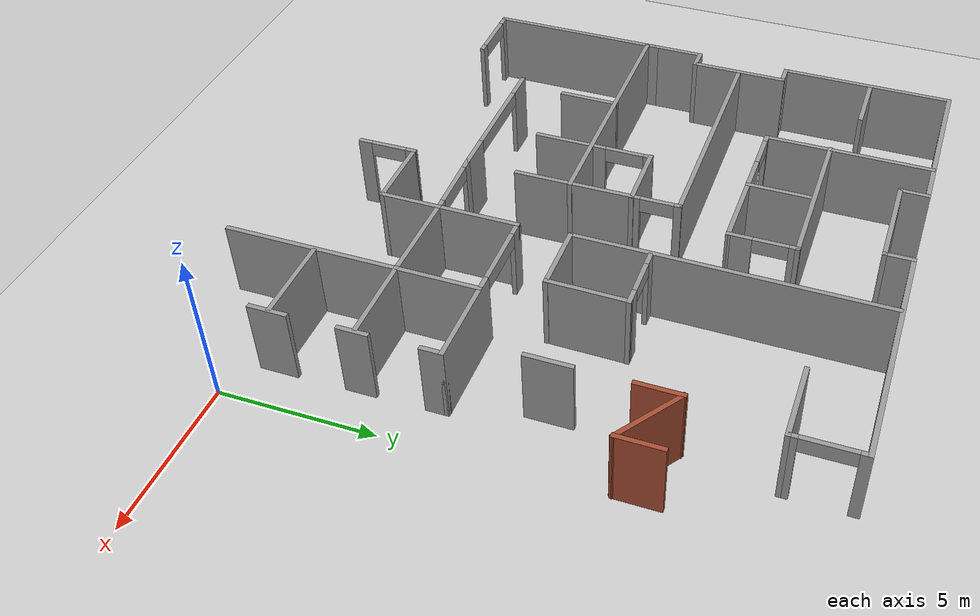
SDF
<sdf version="1.6">
 <world name="default">
  <model name="ground_plane">
   <static>1</static>
   <link name="link">
    <collision name="collision">
     <geometry><plane><normal>0 0 1</normal><size>100 100</size></plane></geometry>
     <surface><friction><ode><mu>100</mu><mu2>50</mu2></ode></friction></surface>
    </collision>
    <visual name="visual">
     <cast_shadows>0</cast_shadows>
     <geometry><plane><normal>0 0 1</normal><size>100 100</size></plane></geometry>
     <material>
      <script><uri>file://media/materials/scripts/gazebo.material</uri><name>Gazebo/Grey</name></script>
     </material>
    </visual>
   </link>
  </model>
  <model name="shopping01">
   <pose>-0.21266 0.4735 0 0 -0 0</pose>
   <link name="Wall_103">
    <collision name="Wall_103_Collision">
     <geometry><box><size>8.25 0.15 2.5</size></box></geometry>
     <pose>0 0 1.25 0 -0 0</pose>
    </collision>
    <visual name="Wall_103_Visual">
     <pose>0 0 1.25 0 -0 0</pose>
     <geometry><box><size>8.25 0.15 2.5</size></box></geometry>
     <material>
      <script><uri>file://media/materials/scripts/gazebo.material</uri><name>Gazebo/Grey</name></script>
      <ambient>1 1 1 1</ambient>
     </material>
     <meta><layer>0</layer></meta>
    </visual>
    <pose>-3.82398 2.01144 0 0 -0 1.5708</pose>
   </link>
   <link name="Wall_105">
    <collision name="Wall_105_Collision">
     <geometry><box><size>2.75 0.15 2.5</size></box></geometry>
     <pose>0 0 1.25 0 -0 0</pose>
    </collision>
    <visual name="Wall_105_Visual">
     <pose>0 0 1.25 0 -0 0</pose>
     <geometry><box><size>2.75 0.15 2.5</size></box></geometry>
     <material>
      <script><uri>file://media/materials/scripts/gazebo.material</uri><name>Gazebo/Grey</name></script>
      <ambient>1 1 1 1</ambient>
     </material>
     <meta><layer>0</layer></meta>
    </visual>
    <pose>-2.5383 3.46978 0 0 -0 0</pose>
   </link>
   <link name="Wall_109">
    <collision name="Wall_109_Collision">
     <geometry><box><size>2.75 0.15 2.5</size></box></geometry>
     <pose>0 0 1.25 0 -0 0</pose>
    </collision>
    <visual name="Wall_109_Visual">
     <pose>0 0 1.25 0 -0 0</pose>
     <geometry><box><size>2.75 0.15 2.5</size></box></geometry>
     <material>
      <script><uri>file://media/materials/scripts/gazebo.material</uri><name>Gazebo/Grey</name></script>
      <ambient>1 1 1 1</ambient>
     </material>
     <meta><layer>0</layer></meta>
    </visual>
    <pose>-2.4356 0.846548 0 0 -0 0</pose>
   </link>
   <link name="Wall_114">
    <collision name="Wall_114_Collision">
     <geometry><box><size>9.90884 0.15 2.5</size></box></geometry>
     <pose>0 0 1.25 0 -0 0</pose>
    </collision>
    <visual name="Wall_114_Visual">
     <pose>0 0 1.25 0 -0 0</pose>
     <geometry><box><size>9.90884 0.15 2.5</size></box></geometry>
     <material>
      <script><uri>file://media/materials/scripts/gazebo.material</uri><name>Gazebo/Grey</name></script>
      <ambient>1 1 1 1</ambient>
     </material>
     <meta><layer>0</layer></meta>
    </visual>
    <pose>-6.8277 12.6229 0 0 -0 -1.57579</pose>
   </link>
   <link name="Wall_115">
    <collision name="Wall_115_Collision">
     <geometry><box><size>2.26087 0.15 2.5</size></box></geometry>
     <pose>0 0 1.25 0 -0 0</pose>
    </collision>
    <visual name="Wall_115_Visual">
     <pose>0 0 1.25 0 -0 0</pose>
     <geometry><box><size>2.26087 0.15 2.5</size></box></geometry>
     <material>
      <script><uri>file://media/materials/scripts/gazebo.material</uri><name>Gazebo/Grey</name></script>
      <ambient>1 1 1 1</ambient>
     </material>
     <meta><layer>0</layer></meta>
    </visual>
    <pose>-5.78364 7.74355 0 0 -0 0</pose>
   </link>
   <link name="Wall_116">
    <collision name="Wall_116_Collision">
     <geometry><box><size>2.65952 0.15 2.5</size></box></geometry>
     <pose>0 0 1.25 0 -0 0</pose>
    </collision>
    <visual name="Wall_116_Visual">
     <pose>0 0 1.25 0 -0 0</pose>
     <geometry><box><size>2.65952 0.15 2.5</size></box></geometry>
     <material>
      <script><uri>file://media/materials/scripts/gazebo.material</uri><name>Gazebo/Grey</name></script>
      <ambient>1 1 1 1</ambient>
     </material>
     <meta><layer>0</layer></meta>
    </visual>
    <pose>-4.72553 8.99791 0 0 -0 1.5583</pose>
   </link>
   <link name="Wall_117">
    <pose>-5.7479 10.2523 0 0 -0 3.14159</pose>
    <visual name="Wall_117_Visual_0">
     <pose>-0.845011 0 1.25 0 -0 0</pose>
     <geometry><box><size>0.570847 0.15 2.5</size></box></geometry>
     <material>
      <script><uri>file://media/materials/scripts/gazebo.material</uri><name>Gazebo/Grey</name></script>
      <ambient>1 1 1 1</ambient>
     </material>
     <meta><layer>0</layer></meta>
    </visual>
    <collision name="Wall_117_Collision_0">
     <geometry><box><size>0.570847 0.15 2.5</size></box></geometry>
     <pose>-0.845011 0 1.25 0 -0 0</pose>
    </collision>
    <visual name="Wall_117_Visual_1">
     <pose>0.866184 0 1.25 0 -0 0</pose>
     <geometry><box><size>0.528501 0.15 2.5</size></box></geometry>
     <material>
      <script><uri>file://media/materials/scripts/gazebo.material</uri><name>Gazebo/Grey</name></script>
      <ambient>1 1 1 1</ambient>
     </material>
     <meta><layer>0</layer></meta>
    </visual>
    <collision name="Wall_117_Collision_1">
     <geometry><box><size>0.528501 0.15 2.5</size></box></geometry>
     <pose>0.866184 0 1.25 0 -0 0</pose>
    </collision>
    <visual name="Wall_117_Visual_2">
     <pose>0.021173 0 2.25 0 -0 0</pose>
     <geometry><box><size>1.16152 0.15 0.5</size></box></geometry>
     <material>
      <script><uri>file://media/materials/scripts/gazebo.material</uri><name>Gazebo/Grey</name></script>
      <ambient>1 1 1 1</ambient>
     </material>
     <meta><layer>0</layer></meta>
    </visual>
    <collision name="Wall_117_Collision_2">
     <geometry><box><size>1.16152 0.15 0.5</size></box></geometry>
     <pose>0.021173 0 2.25 0 -0 0</pose>
    </collision>
   </link>
   <link name="Wall_126">
    <collision name="Wall_126_Collision">
     <geometry><box><size>1.5 0.15 2.5</size></box></geometry>
     <pose>0 0 1.25 0 -0 0</pose>
    </collision>
    <visual name="Wall_126_Visual">
     <pose>0 0 1.25 0 -0 0</pose>
     <geometry><box><size>1.5 0.15 2.5</size></box></geometry>
     <material>
      <script><uri>file://media/materials/scripts/gazebo.material</uri><name>Gazebo/Grey</name></script>
      <ambient>1 1 1 1</ambient>
     </material>
     <meta><layer>0</layer></meta>
    </visual>
    <pose>-1.83472 8.87354 0 0 -0 -1.5708</pose>
   </link>
   <link name="Wall_136">
    <collision name="Wall_136_Collision">
     <geometry><box><size>1.5 0.15 2.5</size></box></geometry>
     <pose>0 0 1.25 0 -0 0</pose>
    </collision>
    <visual name="Wall_136_Visual">
     <pose>0 0 1.25 0 -0 0</pose>
     <geometry><box><size>1.5 0.15 2.5</size></box></geometry>
     <material>
      <script><uri>file://media/materials/scripts/gazebo.material</uri><name>Gazebo/Bricks</name></script>
      <ambient>1 1 1 1</ambient>
     </material>
     <meta><layer>0</layer></meta>
    </visual>
    <pose>0.043228 11.9946 0 0 -0 -1.5708</pose>
   </link>
   <link name="Wall_138">
    <collision name="Wall_138_Collision">
     <geometry><box><size>1.5 0.15 2.5</size></box></geometry>
     <pose>0 0 1.25 0 -0 0</pose>
    </collision>
    <visual name="Wall_138_Visual">
     <pose>0 0 1.25 0 -0 0</pose>
     <geometry><box><size>1.5 0.15 2.5</size></box></geometry>
     <material>
      <script><uri>file://media/materials/scripts/gazebo.material</uri><name>Gazebo/Bricks</name></script>
      <ambient>1 1 1 1</ambient>
     </material>
     <meta><layer>0</layer></meta>
    </visual>
    <pose>-1.83472 11.9692 0 0 -0 1.5708</pose>
   </link>
   <link name="Wall_139">
    <collision name="Wall_139_Collision">
     <geometry><box><size>2.4481 0.15 2.5</size></box></geometry>
     <pose>0 0 1.25 0 -0 0</pose>
    </collision>
    <visual name="Wall_139_Visual">
     <pose>0 0 1.25 0 -0 0</pose>
     <geometry><box><size>2.4481 0.15 2.5</size></box></geometry>
     <material>
      <script><uri>file://media/materials/scripts/gazebo.material</uri><name>Gazebo/Bricks</name></script>
      <ambient>1 1 1 1</ambient>
     </material>
     <meta><layer>0</layer></meta>
    </visual>
    <pose>-0.895747 11.9819 0 0 -0 -0.614303</pose>
   </link>
   <link name="Wall_146">
    <collision name="Wall_146_Collision">
     <geometry><box><size>2.5 0.15 2.5</size></box></geometry>
     <pose>0 0 1.25 0 -0 0</pose>
    </collision>
    <visual name="Wall_146_Visual">
     <pose>0 0 1.25 0 -0 0</pose>
     <geometry><box><size>2.5 0.15 2.5</size></box></geometry>
     <material>
      <script><uri>file://media/materials/scripts/gazebo.material</uri><name>Gazebo/Grey</name></script>
      <ambient>1 1 1 1</ambient>
     </material>
     <meta><layer>0</layer></meta>
    </visual>
    <pose>-2.60522 15.47 0 0 -0 3.14159</pose>
   </link>
   <link name="Wall_208">
    <pose>-9.06127 0.697969 0 0 -0 1.58217</pose>
    <visual name="Wall_208_Visual_0">
     <pose>-0.7706 0 1.25 0 -0 0</pose>
     <geometry><box><size>0.458558 0.15 2.5</size></box></geometry>
     <material>
      <script><uri>file://media/materials/scripts/gazebo.material</uri><name>Gazebo/Grey</name></script>
      <ambient>1 1 1 1</ambient>
     </material>
     <meta><layer>0</layer></meta>
    </visual>
    <collision name="Wall_208_Collision_0">
     <geometry><box><size>0.458558 0.15 2.5</size></box></geometry>
     <pose>-0.7706 0 1.25 0 -0 0</pose>
    </collision>
    <visual name="Wall_208_Visual_1">
     <pose>0.819729 0 1.25 0 -0 0</pose>
     <geometry><box><size>0.360301 0.15 2.5</size></box></geometry>
     <material>
      <script><uri>file://media/materials/scripts/gazebo.material</uri><name>Gazebo/Grey</name></script>
      <ambient>1 1 1 1</ambient>
     </material>
     <meta><layer>0</layer></meta>
    </visual>
    <collision name="Wall_208_Collision_1">
     <geometry><box><size>0.360301 0.15 2.5</size></box></geometry>
     <pose>0.819729 0 1.25 0 -0 0</pose>
    </collision>
    <visual name="Wall_208_Visual_2">
     <pose>0.049128 0 2.25 0 -0 0</pose>
     <geometry><box><size>1.1809 0.15 0.5</size></box></geometry>
     <material>
      <script><uri>file://media/materials/scripts/gazebo.material</uri><name>Gazebo/Grey</name></script>
      <ambient>1 1 1 1</ambient>
     </material>
     <meta><layer>0</layer></meta>
    </visual>
    <collision name="Wall_208_Collision_2">
     <geometry><box><size>1.1809 0.15 0.5</size></box></geometry>
     <pose>0.049128 0 2.25 0 -0 0</pose>
    </collision>
   </link>
   <link name="Wall_209">
    <collision name="Wall_209_Collision">
     <geometry><box><size>2.46 0.15 2.5</size></box></geometry>
     <pose>0 0 1.25 0 -0 0</pose>
    </collision>
    <visual name="Wall_209_Visual">
     <pose>0 0 1.25 0 -0 0</pose>
     <geometry><box><size>2.46 0.15 2.5</size></box></geometry>
     <material>
      <script><uri>file://media/materials/scripts/gazebo.material</uri><name>Gazebo/Grey</name></script>
      <ambient>1 1 1 1</ambient>
     </material>
     <meta><layer>0</layer></meta>
    </visual>
    <pose>-7.91678 1.62295 0 0 -0 0</pose>
   </link>
   <link name="Wall_216">
    <collision name="Wall_216_Collision">
     <geometry><box><size>2 0.15 2.5</size></box></geometry>
     <pose>0 0 1.25 0 -0 0</pose>
    </collision>
    <visual name="Wall_216_Visual">
     <pose>0 0 1.25 0 -0 0</pose>
     <geometry><box><size>2 0.15 2.5</size></box></geometry>
     <material>
      <script><uri>file://media/materials/scripts/gazebo.material</uri><name>Gazebo/Grey</name></script>
      <ambient>1 1 1 1</ambient>
     </material>
     <meta><layer>0</layer></meta>
    </visual>
    <pose>-6.76342 2.57901 0 0 -0 -1.5708</pose>
   </link>
   <link name="Wall_218">
    <collision name="Wall_218_Collision">
     <geometry><box><size>3.07532 0.15 2.5</size></box></geometry>
     <pose>0 0 1.25 0 -0 0</pose>
    </collision>
    <visual name="Wall_218_Visual">
     <pose>0 0 1.25 0 -0 0</pose>
     <geometry><box><size>3.07532 0.15 2.5</size></box></geometry>
     <material>
      <script><uri>file://media/materials/scripts/gazebo.material</uri><name>Gazebo/Grey</name></script>
      <ambient>1 1 1 1</ambient>
     </material>
     <meta><layer>0</layer></meta>
    </visual>
    <pose>-5.30086 3.48689 0 0 -0 -0.011703</pose>
   </link>
   <link name="Wall_3">
    <collision name="Wall_3_Collision">
     <geometry><box><size>5.5 0.15 2.5</size></box></geometry>
     <pose>0 0 1.25 0 -0 0</pose>
    </collision>
    <visual name="Wall_3_Visual">
     <pose>0 0 1.25 0 -0 0</pose>
     <geometry><box><size>5.5 0.15 2.5</size></box></geometry>
     <material>
      <script><uri>file://media/materials/scripts/gazebo.material</uri><name>Gazebo/Grey</name></script>
      <ambient>1 1 1 1</ambient>
     </material>
     <meta><layer>0</layer></meta>
    </visual>
    <pose>-14.8052 17.57 0 0 -0 0</pose>
   </link>
   <link name="Wall_300">
    <collision name="Wall_300_Collision">
     <geometry><box><size>2 0.15 2.5</size></box></geometry>
     <pose>0 0 1.25 0 -0 0</pose>
    </collision>
    <visual name="Wall_300_Visual">
     <pose>0 0 1.25 0 -0 0</pose>
     <geometry><box><size>2 0.15 2.5</size></box></geometry>
     <material>
      <script><uri>file://media/materials/scripts/gazebo.material</uri><name>Gazebo/Grey</name></script>
      <ambient>1 1 1 1</ambient>
     </material>
     <meta><layer>0</layer></meta>
    </visual>
    <pose>-16.4156 14.9184 0 0 -0 0</pose>
   </link>
   <link name="Wall_334">
    <collision name="Wall_334_Collision">
     <geometry><box><size>5.5 0.15 2.5</size></box></geometry>
     <pose>0 0 1.25 0 -0 0</pose>
    </collision>
    <visual name="Wall_334_Visual">
     <pose>0 0 1.25 0 -0 0</pose>
     <geometry><box><size>5.5 0.15 2.5</size></box></geometry>
     <material>
      <script><uri>file://media/materials/scripts/gazebo.material</uri><name>Gazebo/Grey</name></script>
      <ambient>1 1 1 1</ambient>
     </material>
     <meta><layer>0</layer></meta>
    </visual>
    <pose>-13.4783 14.8705 0 0 -0 -1.5708</pose>
   </link>
   <link name="Wall_335">
    <pose>-10.95 12.1843 0 0 -0 -0.004425</pose>
    <visual name="Wall_335_Visual_0">
     <pose>-2.44877 0 1.25 0 -0 0</pose>
     <geometry><box><size>0.309033 0.15 2.5</size></box></geometry>
     <material>
      <script><uri>file://media/materials/scripts/gazebo.material</uri><name>Gazebo/Grey</name></script>
      <ambient>1 1 1 1</ambient>
     </material>
     <meta><layer>0</layer></meta>
    </visual>
    <collision name="Wall_335_Collision_0">
     <geometry><box><size>0.309033 0.15 2.5</size></box></geometry>
     <pose>-2.44877 0 1.25 0 -0 0</pose>
    </collision>
    <visual name="Wall_335_Visual_1">
     <pose>0.727252 0 1.25 0 -0 0</pose>
     <geometry><box><size>3.75207 0.15 2.5</size></box></geometry>
     <material>
      <script><uri>file://media/materials/scripts/gazebo.material</uri><name>Gazebo/Grey</name></script>
      <ambient>1 1 1 1</ambient>
     </material>
     <meta><layer>0</layer></meta>
    </visual>
    <collision name="Wall_335_Collision_1">
     <geometry><box><size>3.75207 0.15 2.5</size></box></geometry>
     <pose>0.727252 0 1.25 0 -0 0</pose>
    </collision>
    <visual name="Wall_335_Visual_2">
     <pose>-1.72152 0 2.25 0 -0 0</pose>
     <geometry><box><size>1.14547 0.15 0.5</size></box></geometry>
     <material>
      <script><uri>file://media/materials/scripts/gazebo.material</uri><name>Gazebo/Grey</name></script>
      <ambient>1 1 1 1</ambient>
     </material>
     <meta><layer>0</layer></meta>
    </visual>
    <collision name="Wall_335_Collision_2">
     <geometry><box><size>1.14547 0.15 0.5</size></box></geometry>
     <pose>-1.72152 0 2.25 0 -0 0</pose>
    </collision>
   </link>
   <link name="Wall_337">
    <collision name="Wall_337_Collision">
     <geometry><box><size>2.22 0.15 2.5</size></box></geometry>
     <pose>0 0 1.25 0 -0 0</pose>
    </collision>
    <visual name="Wall_337_Visual">
     <pose>0 0 1.25 0 -0 0</pose>
     <geometry><box><size>2.22 0.15 2.5</size></box></geometry>
     <material>
      <script><uri>file://media/materials/scripts/gazebo.material</uri><name>Gazebo/Grey</name></script>
      <ambient>1 1 1 1</ambient>
     </material>
     <meta><layer>0</layer></meta>
    </visual>
    <pose>-10.8828 13.214 0 0 -0 -1.5708</pose>
   </link>
   <link name="Wall_343">
    <collision name="Wall_343_Collision">
     <geometry><box><size>2 0.15 2.5</size></box></geometry>
     <pose>0 0 1.25 0 -0 0</pose>
    </collision>
    <visual name="Wall_343_Visual">
     <pose>0 0 1.25 0 -0 0</pose>
     <geometry><box><size>2 0.15 2.5</size></box></geometry>
     <material>
      <script><uri>file://media/materials/scripts/gazebo.material</uri><name>Gazebo/Grey</name></script>
      <ambient>1 1 1 1</ambient>
     </material>
     <meta><layer>0</layer></meta>
    </visual>
    <pose>-13.6736 6.00993 0 0 -0 -1.5708</pose>
   </link>
   <link name="Wall_4">
    <collision name="Wall_4_Collision">
     <geometry><box><size>1 0.15 2.5</size></box></geometry>
     <pose>0 0 1.25 0 -0 0</pose>
    </collision>
    <visual name="Wall_4_Visual">
     <pose>0 0 1.25 0 -0 0</pose>
     <geometry><box><size>1 0.15 2.5</size></box></geometry>
     <material>
      <script><uri>file://media/materials/scripts/gazebo.material</uri><name>Gazebo/Grey</name></script>
      <ambient>1 1 1 1</ambient>
     </material>
     <meta><layer>0</layer></meta>
    </visual>
    <pose>-12.1302 17.145 0 0 -0 -1.5708</pose>
   </link>
   <link name="Wall_48">
    <collision name="Wall_48_Collision">
     <geometry><box><size>5.75 0.15 2.5</size></box></geometry>
     <pose>0 0 1.25 0 -0 0</pose>
    </collision>
    <visual name="Wall_48_Visual">
     <pose>0 0 1.25 0 -0 0</pose>
     <geometry><box><size>5.75 0.15 2.5</size></box></geometry>
     <material>
      <script><uri>file://media/materials/scripts/gazebo.material</uri><name>Gazebo/Grey</name></script>
      <ambient>1 1 1 1</ambient>
     </material>
     <meta><layer>0</layer></meta>
    </visual>
    <pose>-17.4802 14.77 0 0 -0 -1.5708</pose>
   </link>
   <link name="Wall_49">
    <collision name="Wall_49_Collision">
     <geometry><box><size>0.75 0.15 2.5</size></box></geometry>
     <pose>0 0 1.25 0 -0 0</pose>
    </collision>
    <visual name="Wall_49_Visual">
     <pose>0 0 1.25 0 -0 0</pose>
     <geometry><box><size>0.75 0.15 2.5</size></box></geometry>
     <material>
      <script><uri>file://media/materials/scripts/gazebo.material</uri><name>Gazebo/Grey</name></script>
      <ambient>1 1 1 1</ambient>
     </material>
     <meta><layer>0</layer></meta>
    </visual>
    <pose>-17.1802 11.97 0 0 -0 0</pose>
   </link>
   <link name="Wall_5">
    <collision name="Wall_5_Collision">
     <geometry><box><size>3.25 0.15 2.5</size></box></geometry>
     <pose>0 0 1.25 0 -0 0</pose>
    </collision>
    <visual name="Wall_5_Visual">
     <pose>0 0 1.25 0 -0 0</pose>
     <geometry><box><size>3.25 0.15 2.5</size></box></geometry>
     <material>
      <script><uri>file://media/materials/scripts/gazebo.material</uri><name>Gazebo/Grey</name></script>
      <ambient>1 1 1 1</ambient>
     </material>
     <meta><layer>0</layer></meta>
    </visual>
    <pose>-10.5802 16.72 0 0 -0 0</pose>
   </link>
   <link name="Wall_51">
    <collision name="Wall_51_Collision">
     <geometry><box><size>3.25 0.15 2.5</size></box></geometry>
     <pose>0 0 1.25 0 -0 0</pose>
    </collision>
    <visual name="Wall_51_Visual">
     <pose>0 0 1.25 0 -0 0</pose>
     <geometry><box><size>3.25 0.15 2.5</size></box></geometry>
     <material>
      <script><uri>file://media/materials/scripts/gazebo.material</uri><name>Gazebo/Grey</name></script>
      <ambient>1 1 1 1</ambient>
     </material>
     <meta><layer>0</layer></meta>
    </visual>
    <pose>-16.8802 10.42 0 0 -0 -1.5708</pose>
   </link>
   <link name="Wall_52">
    <collision name="Wall_52_Collision">
     <geometry><box><size>0.75 0.15 2.5</size></box></geometry>
     <pose>0 0 1.25 0 -0 0</pose>
    </collision>
    <visual name="Wall_52_Visual">
     <pose>0 0 1.25 0 -0 0</pose>
     <geometry><box><size>0.75 0.15 2.5</size></box></geometry>
     <material>
      <script><uri>file://media/materials/scripts/gazebo.material</uri><name>Gazebo/Grey</name></script>
      <ambient>1 1 1 1</ambient>
     </material>
     <meta><layer>0</layer></meta>
    </visual>
    <pose>-17.1802 8.87004 0 0 -0 3.14159</pose>
   </link>
   <link name="Wall_53">
    <collision name="Wall_53_Collision">
     <geometry><box><size>1.75 0.15 2.5</size></box></geometry>
     <pose>0 0 1.25 0 -0 0</pose>
    </collision>
    <visual name="Wall_53_Visual">
     <pose>0 0 1.25 0 -0 0</pose>
     <geometry><box><size>1.75 0.15 2.5</size></box></geometry>
     <material>
      <script><uri>file://media/materials/scripts/gazebo.material</uri><name>Gazebo/Grey</name></script>
      <ambient>1 1 1 1</ambient>
     </material>
     <meta><layer>0</layer></meta>
    </visual>
    <pose>-17.4802 8.07004 0 0 -0 -1.5708</pose>
   </link>
   <link name="Wall_55">
    <collision name="Wall_55_Collision">
     <geometry><box><size>6 0.15 2.5</size></box></geometry>
     <pose>0 0 1.25 0 -0 0</pose>
    </collision>
    <visual name="Wall_55_Visual">
     <pose>0 0 1.25 0 -0 0</pose>
     <geometry><box><size>6 0.15 2.5</size></box></geometry>
     <material>
      <script><uri>file://media/materials/scripts/gazebo.material</uri><name>Gazebo/Grey</name></script>
      <ambient>1 1 1 1</ambient>
     </material>
     <meta><layer>0</layer></meta>
    </visual>
    <pose>-17.4802 4.34504 0 0 -0 -1.5708</pose>
   </link>
   <link name="Wall_56">
    <pose>-16.4302 1.42004 0 0 -0 0</pose>
    <visual name="Wall_56_Visual_0">
     <pose>-0.910106 0 1.25 0 -0 0</pose>
     <geometry><box><size>0.429787 0.15 2.5</size></box></geometry>
     <material>
      <script><uri>file://media/materials/scripts/gazebo.material</uri><name>Gazebo/Grey</name></script>
      <ambient>1 1 1 1</ambient>
     </material>
     <meta><layer>0</layer></meta>
    </visual>
    <collision name="Wall_56_Collision_0">
     <geometry><box><size>0.429787 0.15 2.5</size></box></geometry>
     <pose>-0.910106 0 1.25 0 -0 0</pose>
    </collision>
    <visual name="Wall_56_Visual_1">
     <pose>0.976169 0 1.25 0 -0 0</pose>
     <geometry><box><size>0.297661 0.15 2.5</size></box></geometry>
     <material>
      <script><uri>file://media/materials/scripts/gazebo.material</uri><name>Gazebo/Grey</name></script>
      <ambient>1 1 1 1</ambient>
     </material>
     <meta><layer>0</layer></meta>
    </visual>
    <collision name="Wall_56_Collision_1">
     <geometry><box><size>0.297661 0.15 2.5</size></box></geometry>
     <pose>0.976169 0 1.25 0 -0 0</pose>
    </collision>
    <visual name="Wall_56_Visual_2">
     <pose>0.066063 0 2.25 0 -0 0</pose>
     <geometry><box><size>1.52255 0.15 0.5</size></box></geometry>
     <material>
      <script><uri>file://media/materials/scripts/gazebo.material</uri><name>Gazebo/Grey</name></script>
      <ambient>1 1 1 1</ambient>
     </material>
     <meta><layer>0</layer></meta>
    </visual>
    <collision name="Wall_56_Collision_2">
     <geometry><box><size>1.52255 0.15 0.5</size></box></geometry>
     <pose>0.066063 0 2.25 0 -0 0</pose>
    </collision>
   </link>
   <link name="Wall_6">
    <collision name="Wall_6_Collision">
     <geometry><box><size>1 0.15 2.5</size></box></geometry>
     <pose>0 0 1.25 0 -0 0</pose>
    </collision>
    <visual name="Wall_6_Visual">
     <pose>0 0 1.25 0 -0 0</pose>
     <geometry><box><size>1 0.15 2.5</size></box></geometry>
     <material>
      <script><uri>file://media/materials/scripts/gazebo.material</uri><name>Gazebo/Grey</name></script>
      <ambient>1 1 1 1</ambient>
     </material>
     <meta><layer>0</layer></meta>
    </visual>
    <pose>-9.03022 17.145 0 0 -0 1.5708</pose>
   </link>
   <link name="Wall_68">
    <pose>-8.42174 13.2232 0 0 -0 1.5708</pose>
    <visual name="Wall_68_Visual_0">
     <pose>-0.721597 0 1.25 0 -0 0</pose>
     <geometry><box><size>0.806806 0.15 2.5</size></box></geometry>
     <material>
      <script><uri>file://media/materials/scripts/gazebo.material</uri><name>Gazebo/Grey</name></script>
      <ambient>1 1 1 1</ambient>
     </material>
     <meta><layer>0</layer></meta>
    </visual>
    <collision name="Wall_68_Collision_0">
     <geometry><box><size>0.806806 0.15 2.5</size></box></geometry>
     <pose>-0.721597 0 1.25 0 -0 0</pose>
    </collision>
    <visual name="Wall_68_Visual_1">
     <pose>0.958606 0 1.25 0 -0 0</pose>
     <geometry><box><size>0.332788 0.15 2.5</size></box></geometry>
     <material>
      <script><uri>file://media/materials/scripts/gazebo.material</uri><name>Gazebo/Grey</name></script>
      <ambient>1 1 1 1</ambient>
     </material>
     <meta><layer>0</layer></meta>
    </visual>
    <collision name="Wall_68_Collision_1">
     <geometry><box><size>0.332788 0.15 2.5</size></box></geometry>
     <pose>0.958606 0 1.25 0 -0 0</pose>
    </collision>
    <visual name="Wall_68_Visual_2">
     <pose>0.237009 0 2.25 0 -0 0</pose>
     <geometry><box><size>1.11041 0.15 0.5</size></box></geometry>
     <material>
      <script><uri>file://media/materials/scripts/gazebo.material</uri><name>Gazebo/Grey</name></script>
      <ambient>1 1 1 1</ambient>
     </material>
     <meta><layer>0</layer></meta>
    </visual>
    <collision name="Wall_68_Collision_2">
     <geometry><box><size>1.11041 0.15 0.5</size></box></geometry>
     <pose>0.237009 0 2.25 0 -0 0</pose>
    </collision>
   </link>
   <link name="Wall_69">
    <collision name="Wall_69_Collision">
     <geometry><box><size>5.25 0.15 2.5</size></box></geometry>
     <pose>0 0 1.25 0 -0 0</pose>
    </collision>
    <visual name="Wall_69_Visual">
     <pose>0 0 1.25 0 -0 0</pose>
     <geometry><box><size>5.25 0.15 2.5</size></box></geometry>
     <material>
      <script><uri>file://media/materials/scripts/gazebo.material</uri><name>Gazebo/Grey</name></script>
      <ambient>1 1 1 1</ambient>
     </material>
     <meta><layer>0</layer></meta>
    </visual>
    <pose>-10.9717 14.2732 0 0 -0 3.14159</pose>
   </link>
   <link name="Wall_7">
    <collision name="Wall_7_Collision">
     <geometry><box><size>7.75 0.15 2.5</size></box></geometry>
     <pose>0 0 1.25 0 -0 0</pose>
    </collision>
    <visual name="Wall_7_Visual">
     <pose>0 0 1.25 0 -0 0</pose>
     <geometry><box><size>7.75 0.15 2.5</size></box></geometry>
     <material>
      <script><uri>file://media/materials/scripts/gazebo.material</uri><name>Gazebo/Grey</name></script>
      <ambient>1 1 1 1</ambient>
     </material>
     <meta><layer>0</layer></meta>
    </visual>
    <pose>-5.23022 17.57 0 0 -0 0</pose>
   </link>
   <link name="Wall_71">
    <collision name="Wall_71_Collision">
     <geometry><box><size>7.68258 0.15 2.5</size></box></geometry>
     <pose>0 0 1.25 0 -0 0</pose>
    </collision>
    <visual name="Wall_71_Visual">
     <pose>0 0 1.25 0 -0 0</pose>
     <geometry><box><size>7.68258 0.15 2.5</size></box></geometry>
     <material>
      <script><uri>file://media/materials/scripts/gazebo.material</uri><name>Gazebo/Grey</name></script>
      <ambient>1 1 1 1</ambient>
     </material>
     <meta><layer>0</layer></meta>
    </visual>
    <pose>-12.959 10.4509 0 0 -0 0.002985</pose>
   </link>
   <link name="Wall_72">
    <pose>-9.14771 7.80965 0 0 -0 -1.56232</pose>
    <visual name="Wall_72_Visual_0">
     <pose>-2.60232 0 1.25 0 -0 0</pose>
     <geometry><box><size>0.250582 0.15 2.5</size></box></geometry>
     <material>
      <script><uri>file://media/materials/scripts/gazebo.material</uri><name>Gazebo/Grey</name></script>
      <ambient>1 1 1 1</ambient>
     </material>
     <meta><layer>0</layer></meta>
    </visual>
    <collision name="Wall_72_Collision_0">
     <geometry><box><size>0.250582 0.15 2.5</size></box></geometry>
     <pose>-2.60232 0 1.25 0 -0 0</pose>
    </collision>
    <visual name="Wall_72_Visual_1">
     <pose>0.666772 0 1.25 0 -0 0</pose>
     <geometry><box><size>4.12168 0.15 2.5</size></box></geometry>
     <material>
      <script><uri>file://media/materials/scripts/gazebo.material</uri><name>Gazebo/Grey</name></script>
      <ambient>1 1 1 1</ambient>
     </material>
     <meta><layer>0</layer></meta>
    </visual>
    <collision name="Wall_72_Collision_1">
     <geometry><box><size>4.12168 0.15 2.5</size></box></geometry>
     <pose>0.666772 0 1.25 0 -0 0</pose>
    </collision>
    <visual name="Wall_72_Visual_2">
     <pose>-1.93555 0 2.25 0 -0 0</pose>
     <geometry><box><size>1.08296 0.15 0.5</size></box></geometry>
     <material>
      <script><uri>file://media/materials/scripts/gazebo.material</uri><name>Gazebo/Grey</name></script>
      <ambient>1 1 1 1</ambient>
     </material>
     <meta><layer>0</layer></meta>
    </visual>
    <collision name="Wall_72_Collision_2">
     <geometry><box><size>1.08296 0.15 0.5</size></box></geometry>
     <pose>-1.93555 0 2.25 0 -0 0</pose>
    </collision>
   </link>
   <link name="Wall_74">
    <pose>-11.218 7.00667 0 0 -0 1.5746</pose>
    <visual name="Wall_74_Visual_0">
     <pose>-0.783786 0 1.25 0 -0 0</pose>
     <geometry><box><size>2.38748 0.15 2.5</size></box></geometry>
     <material>
      <script><uri>file://media/materials/scripts/gazebo.material</uri><name>Gazebo/Grey</name></script>
      <ambient>1 1 1 1</ambient>
     </material>
     <meta><layer>0</layer></meta>
    </visual>
    <collision name="Wall_74_Collision_0">
     <geometry><box><size>2.38748 0.15 2.5</size></box></geometry>
     <pose>-0.783786 0 1.25 0 -0 0</pose>
    </collision>
    <visual name="Wall_74_Visual_1">
     <pose>1.8267 0 1.25 0 -0 0</pose>
     <geometry><box><size>0.30165 0.15 2.5</size></box></geometry>
     <material>
      <script><uri>file://media/materials/scripts/gazebo.material</uri><name>Gazebo/Grey</name></script>
      <ambient>1 1 1 1</ambient>
     </material>
     <meta><layer>0</layer></meta>
    </visual>
    <collision name="Wall_74_Collision_1">
     <geometry><box><size>0.30165 0.15 2.5</size></box></geometry>
     <pose>1.8267 0 1.25 0 -0 0</pose>
    </collision>
    <visual name="Wall_74_Visual_2">
     <pose>1.04292 0 2.25 0 -0 0</pose>
     <geometry><box><size>1.26592 0.15 0.5</size></box></geometry>
     <material>
      <script><uri>file://media/materials/scripts/gazebo.material</uri><name>Gazebo/Grey</name></script>
      <ambient>1 1 1 1</ambient>
     </material>
     <meta><layer>0</layer></meta>
    </visual>
    <collision name="Wall_74_Collision_2">
     <geometry><box><size>1.26592 0.15 0.5</size></box></geometry>
     <pose>1.04292 0 2.25 0 -0 0</pose>
    </collision>
   </link>
   <link name="Wall_75">
    <collision name="Wall_75_Collision">
     <geometry><box><size>2.28071 0.15 2.5</size></box></geometry>
     <pose>0 0 1.25 0 -0 0</pose>
    </collision>
    <visual name="Wall_75_Visual">
     <pose>0 0 1.25 0 -0 0</pose>
     <geometry><box><size>2.28071 0.15 2.5</size></box></geometry>
     <material>
      <script><uri>file://media/materials/scripts/gazebo.material</uri><name>Gazebo/Grey</name></script>
      <ambient>1 1 1 1</ambient>
     </material>
     <meta><layer>0</layer></meta>
    </visual>
    <pose>-10.1905 8.92443 0 0 -0 0.014312</pose>
   </link>
   <link name="Wall_77">
    <collision name="Wall_77_Collision">
     <geometry><box><size>8.452 0.15 2.5</size></box></geometry>
     <pose>0 0 1.25 0 -0 0</pose>
    </collision>
    <visual name="Wall_77_Visual">
     <pose>0 0 1.25 0 -0 0</pose>
     <geometry><box><size>8.452 0.15 2.5</size></box></geometry>
     <material>
      <script><uri>file://media/materials/scripts/gazebo.material</uri><name>Gazebo/Grey</name></script>
      <ambient>1 1 1 1</ambient>
     </material>
     <meta><layer>0</layer></meta>
    </visual>
    <pose>-13.2758 6.92795 0 0 -0 0</pose>
   </link>
   <link name="Wall_79">
    <pose>-11.5834 3.45866 0 0 -0 0</pose>
    <visual name="Wall_79_Visual_0">
     <pose>-2.01982 0 1.25 0 -0 0</pose>
     <geometry><box><size>0.960369 0.15 2.5</size></box></geometry>
     <material>
      <script><uri>file://media/materials/scripts/gazebo.material</uri><name>Gazebo/Grey</name></script>
      <ambient>1 1 1 1</ambient>
     </material>
     <meta><layer>0</layer></meta>
    </visual>
    <collision name="Wall_79_Collision_0">
     <geometry><box><size>0.960369 0.15 2.5</size></box></geometry>
     <pose>-2.01982 0 1.25 0 -0 0</pose>
    </collision>
    <visual name="Wall_79_Visual_1">
     <pose>1.90828 0 1.25 0 -0 0</pose>
     <geometry><box><size>1.18345 0.15 2.5</size></box></geometry>
     <material>
      <script><uri>file://media/materials/scripts/gazebo.material</uri><name>Gazebo/Grey</name></script>
      <ambient>1 1 1 1</ambient>
     </material>
     <meta><layer>0</layer></meta>
    </visual>
    <collision name="Wall_79_Collision_1">
     <geometry><box><size>1.18345 0.15 2.5</size></box></geometry>
     <pose>1.90828 0 1.25 0 -0 0</pose>
    </collision>
    <visual name="Wall_79_Visual_2">
     <pose>-0.111538 0 2.25 0 -0 0</pose>
     <geometry><box><size>2.85619 0.15 0.5</size></box></geometry>
     <material>
      <script><uri>file://media/materials/scripts/gazebo.material</uri><name>Gazebo/Grey</name></script>
      <ambient>1 1 1 1</ambient>
     </material>
     <meta><layer>0</layer></meta>
    </visual>
    <collision name="Wall_79_Collision_2">
     <geometry><box><size>2.85619 0.15 0.5</size></box></geometry>
     <pose>-0.111538 0 2.25 0 -0 0</pose>
    </collision>
   </link>
   <link name="Wall_8">
    <pose>-1.43022 16.52 0 0 -0 -1.5708</pose>
    <visual name="Wall_8_Visual_0">
     <pose>-0.958506 0 1.25 0 -0 0</pose>
     <geometry><box><size>0.332987 0.15 2.5</size></box></geometry>
     <material>
      <script><uri>file://media/materials/scripts/gazebo.material</uri><name>Gazebo/Grey</name></script>
      <ambient>1 1 1 1</ambient>
     </material>
     <meta><layer>0</layer></meta>
    </visual>
    <collision name="Wall_8_Collision_0">
     <geometry><box><size>0.332987 0.15 2.5</size></box></geometry>
     <pose>-0.958506 0 1.25 0 -0 0</pose>
    </collision>
    <visual name="Wall_8_Visual_1">
     <pose>0.956471 0 1.25 0 -0 0</pose>
     <geometry><box><size>0.337057 0.15 2.5</size></box></geometry>
     <material>
      <script><uri>file://media/materials/scripts/gazebo.material</uri><name>Gazebo/Grey</name></script>
      <ambient>1 1 1 1</ambient>
     </material>
     <meta><layer>0</layer></meta>
    </visual>
    <collision name="Wall_8_Collision_1">
     <geometry><box><size>0.337057 0.15 2.5</size></box></geometry>
     <pose>0.956471 0 1.25 0 -0 0</pose>
    </collision>
    <visual name="Wall_8_Visual_2">
     <pose>-0.002035 0 2.25 0 -0 0</pose>
     <geometry><box><size>1.57996 0.15 0.5</size></box></geometry>
     <material>
      <script><uri>file://media/materials/scripts/gazebo.material</uri><name>Gazebo/Grey</name></script>
      <ambient>1 1 1 1</ambient>
     </material>
     <meta><layer>0</layer></meta>
    </visual>
    <collision name="Wall_8_Collision_2">
     <geometry><box><size>1.57996 0.15 0.5</size></box></geometry>
     <pose>-0.002035 0 2.25 0 -0 0</pose>
    </collision>
   </link>
   <link name="Wall_82">
    <pose>-7.94966 3.48705 0 0 -0 0.023932</pose>
    <visual name="Wall_82_Visual_0">
     <pose>-1.05707 0 1.25 0 -0 0</pose>
     <geometry><box><size>0.409014 0.15 2.5</size></box></geometry>
     <material>
      <script><uri>file://media/materials/scripts/gazebo.material</uri><name>Gazebo/Grey</name></script>
      <ambient>1 1 1 1</ambient>
     </material>
     <meta><layer>0</layer></meta>
    </visual>
    <collision name="Wall_82_Collision_0">
     <geometry><box><size>0.409014 0.15 2.5</size></box></geometry>
     <pose>-1.05707 0 1.25 0 -0 0</pose>
    </collision>
    <visual name="Wall_82_Visual_1">
     <pose>1.06657 0 1.25 0 -0 0</pose>
     <geometry><box><size>0.390023 0.15 2.5</size></box></geometry>
     <material>
      <script><uri>file://media/materials/scripts/gazebo.material</uri><name>Gazebo/Grey</name></script>
      <ambient>1 1 1 1</ambient>
     </material>
     <meta><layer>0</layer></meta>
    </visual>
    <collision name="Wall_82_Collision_1">
     <geometry><box><size>0.390023 0.15 2.5</size></box></geometry>
     <pose>1.06657 0 1.25 0 -0 0</pose>
    </collision>
    <visual name="Wall_82_Visual_2">
     <pose>0.009496 0 2.25 0 -0 0</pose>
     <geometry><box><size>1.72413 0.15 0.5</size></box></geometry>
     <material>
      <script><uri>file://media/materials/scripts/gazebo.material</uri><name>Gazebo/Grey</name></script>
      <ambient>1 1 1 1</ambient>
     </material>
     <meta><layer>0</layer></meta>
    </visual>
    <collision name="Wall_82_Collision_2">
     <geometry><box><size>1.72413 0.15 0.5</size></box></geometry>
     <pose>0.009496 0 2.25 0 -0 0</pose>
    </collision>
   </link>
   <link name="Wall_83">
    <collision name="Wall_83_Collision">
     <geometry><box><size>2.7157 0.15 2.5</size></box></geometry>
     <pose>0 0 1.25 0 -0 0</pose>
    </collision>
    <visual name="Wall_83_Visual">
     <pose>0 0 1.25 0 -0 0</pose>
     <geometry><box><size>2.7157 0.15 2.5</size></box></geometry>
     <material>
      <script><uri>file://media/materials/scripts/gazebo.material</uri><name>Gazebo/Grey</name></script>
      <ambient>1 1 1 1</ambient>
     </material>
     <meta><layer>0</layer></meta>
    </visual>
    <pose>-6.76342 4.79829 0 0 -0 1.5708</pose>
   </link>
   <link name="Wall_84">
    <pose>-3.96342 6.08114 0 0 -0 0</pose>
    <visual name="Wall_84_Visual_0">
     <pose>-2.60995 0 1.25 0 -0 0</pose>
     <geometry><box><size>0.530092 0.15 2.5</size></box></geometry>
     <material>
      <script><uri>file://media/materials/scripts/gazebo.material</uri><name>Gazebo/Grey</name></script>
      <ambient>1 1 1 1</ambient>
     </material>
     <meta><layer>0</layer></meta>
    </visual>
    <collision name="Wall_84_Collision_0">
     <geometry><box><size>0.530092 0.15 2.5</size></box></geometry>
     <pose>-2.60995 0 1.25 0 -0 0</pose>
    </collision>
    <visual name="Wall_84_Visual_1">
     <pose>1.26083 0 1.25 0 -0 0</pose>
     <geometry><box><size>3.22834 0.15 2.5</size></box></geometry>
     <material>
      <script><uri>file://media/materials/scripts/gazebo.material</uri><name>Gazebo/Grey</name></script>
      <ambient>1 1 1 1</ambient>
     </material>
     <meta><layer>0</layer></meta>
    </visual>
    <collision name="Wall_84_Collision_1">
     <geometry><box><size>3.22834 0.15 2.5</size></box></geometry>
     <pose>1.26083 0 1.25 0 -0 0</pose>
    </collision>
    <visual name="Wall_84_Visual_2">
     <pose>-1.34912 0 2.25 0 -0 0</pose>
     <geometry><box><size>1.99157 0.15 0.5</size></box></geometry>
     <material>
      <script><uri>file://media/materials/scripts/gazebo.material</uri><name>Gazebo/Grey</name></script>
      <ambient>1 1 1 1</ambient>
     </material>
     <meta><layer>0</layer></meta>
    </visual>
    <collision name="Wall_84_Collision_2">
     <geometry><box><size>1.99157 0.15 0.5</size></box></geometry>
     <pose>-1.34912 0 2.25 0 -0 0</pose>
    </collision>
   </link>
   <link name="Wall_85">
    <collision name="Wall_85_Collision">
     <geometry><box><size>0.75 0.15 2.5</size></box></geometry>
     <pose>0 0 1.25 0 -0 0</pose>
    </collision>
    <visual name="Wall_85_Visual">
     <pose>0 0 1.25 0 -0 0</pose>
     <geometry><box><size>0.75 0.15 2.5</size></box></geometry>
     <material>
      <script><uri>file://media/materials/scripts/gazebo.material</uri><name>Gazebo/Grey</name></script>
      <ambient>1 1 1 1</ambient>
     </material>
     <meta><layer>0</layer></meta>
    </visual>
    <pose>-1.16342 5.78114 0 0 -0 -1.5708</pose>
   </link>
   <link name="Wall_87">
    <collision name="Wall_87_Collision">
     <geometry><box><size>1 0.15 2.5</size></box></geometry>
     <pose>0 0 1.25 0 -0 0</pose>
    </collision>
    <visual name="Wall_87_Visual">
     <pose>0 0 1.25 0 -0 0</pose>
     <geometry><box><size>1 0.15 2.5</size></box></geometry>
     <material>
      <script><uri>file://media/materials/scripts/gazebo.material</uri><name>Gazebo/Grey</name></script>
      <ambient>1 1 1 1</ambient>
     </material>
     <meta><layer>0</layer></meta>
    </visual>
    <pose>-1.13203 3.41865 0 0 -0 -1.5708</pose>
   </link>
   <link name="Wall_89">
    <collision name="Wall_89_Collision">
     <geometry><box><size>1.25 0.15 2.5</size></box></geometry>
     <pose>0 0 1.25 0 -0 0</pose>
    </collision>
    <visual name="Wall_89_Visual">
     <pose>0 0 1.25 0 -0 0</pose>
     <geometry><box><size>1.25 0.15 2.5</size></box></geometry>
     <material>
      <script><uri>file://media/materials/scripts/gazebo.material</uri><name>Gazebo/Grey</name></script>
      <ambient>1 1 1 1</ambient>
     </material>
     <meta><layer>0</layer></meta>
    </visual>
    <pose>-1.09203 0.813648 0 0 -0 -1.5708</pose>
   </link>
   <static>1</static>
  </model>
 </world>
</sdf>
